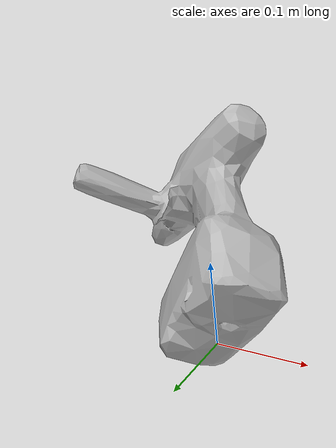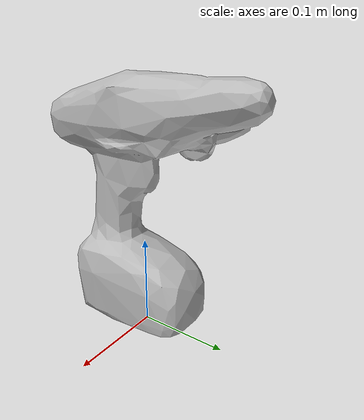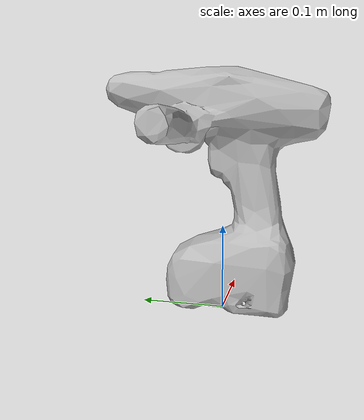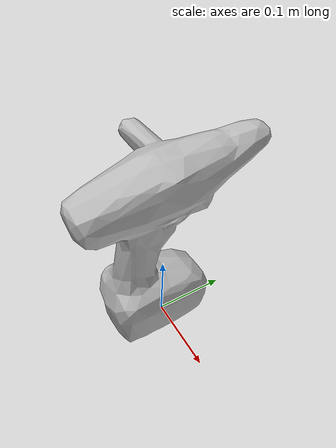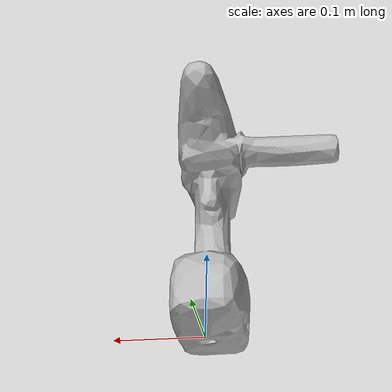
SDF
<?xml version="1.0" ?>
<sdf version="1.4">
  <model name="light_drill">
    <link name="link">
      <inertial>
        <pose>-0.00637 -0.008 0.145794 0 0 0</pose>
        <inertia>
          <ixx>0.001331127</ixx>
          <ixy>-0.000030365</ixy>
          <ixz>-0.000034148</ixz>
          <iyy>0.001157659</iyy>
          <iyz>0.000088073</iyz>
          <izz>0.000378028</izz>
        </inertia>
        <mass>0.150251902</mass>
      </inertial>
      <collision name="collision">
        <pose>0 0 -0.099 0 0 0</pose>
        <geometry>
          <mesh>
            <uri>model://cordless_drill/meshes/cordless_drill.stl</uri>
            <scale> 1 1 1.1 </scale>
          </mesh>
        </geometry>
        <surface>
          <contact>
            <ode>
              <max_vel>0.1</max_vel>
              <min_depth>0.001</min_depth>
            </ode>
          </contact>
        </surface>
      </collision>
      <visual name="visual">
        <pose>0 0 -0.099 0 0 0</pose>
        <geometry>
          <mesh>
            <uri>model://cordless_drill/meshes/cordless_drill.dae</uri>
            <scale> 1.1 1.1 1.1 </scale>
          </mesh>
        </geometry>
      </visual>
    </link>
  </model>
</sdf>
